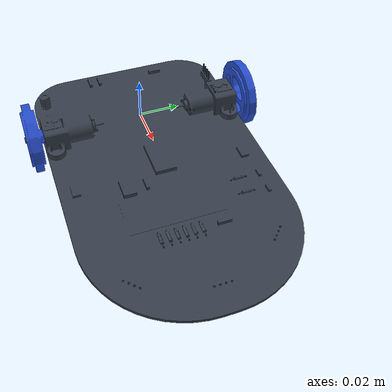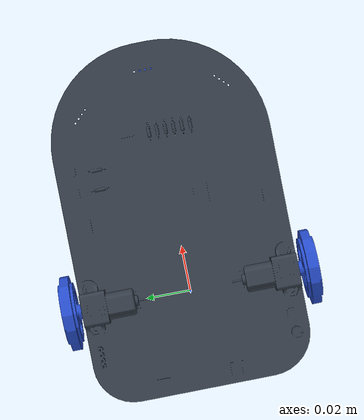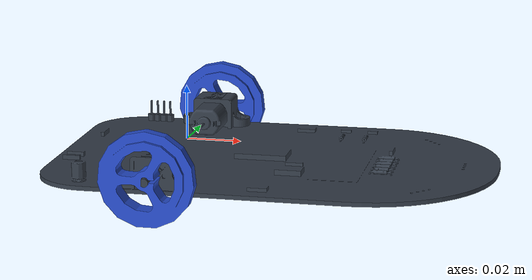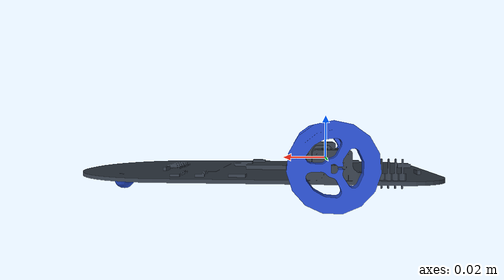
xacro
<?xml version="1.0" ?>
<robot name="microgiit2" xmlns:xacro="http://www.ros.org/wiki/xacro">

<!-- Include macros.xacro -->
  <xacro:include filename="$(find micromouse)/urdf/materiales.xacro" />
  <xacro:include filename="$(find micromouse)/urdf/micromouse2.gazebo" />
  <xacro:include filename="$(find micromouse)/urdf/macros.xacro" />

<!-- Chasiss -->
<link name="link_chassis">
    <!-- pose and inertial -->
    <pose>0 0 0 0 0 0</pose>
    <inertial>
      <mass value="5"/>
      <origin rpy="0 0 0" xyz="0.0 0 0"/>
      <inertia ixx="0.0395416666667" ixy="0" ixz="0" iyy="0.106208333333" iyz="0" izz="0.14166666667"/>
    </inertial>
    <!-- body -->
    <collision name="collision_chassis">
    <origin rpy="0 0 0" xyz="0 0 0"/>
      <geometry>
        <mesh filename="package://micromouse/meshes/collision/chasis.stl" scale="1 1 1"/>
      </geometry>
    </collision>
    <visual>
      <origin rpy="0 0 0" xyz="0 0 0"/>
      <geometry>
        <mesh filename="package://micromouse/meshes/collision/chasis.stl" scale="1 1 1"/>
      </geometry>
      <material name="blue"/>
    </visual>
</link>

<!-- caster front -->
<link name="caster_front_ball">
    <inertial>
      <mass value="0.1"/>
      <origin rpy="0 0 0" xyz="0 0 0"/>
      <inertia ixx="0.000526666666667" ixy="0" ixz="0" iyy="0.000526666666667" iyz="0" izz="0.000526666666667"/>
    </inertial>
    <collision name="caster_front_collision">
      <origin rpy=" 0 0 0" xyz="0 0 0"/>
      <geometry>
        <sphere radius="0.005"/>
      </geometry>
      <surface>
        <friction>
          <ode>
            <mu>0</mu>
            <mu2>0</mu2>
            <slip1>1.0</slip1>
            <slip2>1.0</slip2>
          </ode>
        </friction>
      </surface>
    </collision>
    <visual name="caster_front_visual">
      <origin rpy=" 0 0 0" xyz="0 0 0"/>
      <geometry>
        <sphere radius="0.005"/>
      </geometry>
    </visual>
</link>

<joint name="joint_casterfront_chasis" type="continuous">
  <origin rpy="0 0 0" xyz="0.1 0 -0.011"/>
  <child link="caster_front_ball"/>
  <parent link="link_chassis"/>
</joint>

<!-- Macros -->

<!-- right wheel-->
  <xacro:link_wheel name="link_right_wheel" />
  <xacro:joint_wheel name="joint_right_wheel" child="link_right_wheel" origin_xyz="0 -0.058 0" origin_rpy="0 0 0"/>

<!-- left wheel-->
  <xacro:link_wheel name="link_left_wheel" />
  <xacro:joint_wheel name="joint_left_wheel" child="link_left_wheel" origin_xyz="0 0.058 0" origin_rpy="0 0 3.1416"/>

</robot>

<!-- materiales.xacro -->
<robot >
  <material name="black">
    <color rgba="0.0 0.0 0.0 1.0"/>
  </material>

  <material name="blue">
    <color rgba="0.203125 0.23828125 0.28515625 1.0"/>
  </material>

  <material name="green">
    <color rgba="0.0 0.8 0.0 1.0"/>
  </material>

  <material name="grey">
    <color rgba="0.2 0.2 0.2 1.0"/>
  </material>

  <material name="orange">
    <color rgba="1.0 0.423529411765 0.0392156862745 1.0"/>
  </material>

  <material name="brown">
    <color rgba="0.870588235294 0.811764705882 0.764705882353 1.0"/>
  </material>

  <material name="red">
    <color rgba="0.80078125 0.12890625 0.1328125 1.0"/>
  </material>

  <material name="white">
    <color rgba="1.0 1.0 1.0 1.0"/>
  </material>

  <material name="c_link1">
    <color rgba="0.83 0.83 0.83 1" />
  </material>

  <material name="c_link2">
    <color rgba="1 0.65 0 1" />
  </material>

  <material name="c_link3">
    <color rgba="0.83 0.83 0.83 1" />
  </material>

  <material name="c_link4">
    <color rgba="1 0.65 0 1" />
  </material>

  <material name="c_link5">
    <color rgba="0.44 0.5 0.56 1" />
  </material>

  <material name="c_link6">
    <color rgba="0.83 0.83 0.83 1" />
  </material>

  <material name="c_base_link">
    <color rgba="0.44 0.5 0.56 1" />
  </material>
</robot>

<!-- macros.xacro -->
<robot>
    <macro name="link_wheel" params="name">
        <link name="${name}">
            <inertial>
              <mass value="0.2"/>
              <origin rpy="0 0 0" xyz="0 0 0"/>
              <inertia ixx="0.000526666666667" ixy="0" ixz="0" iyy="0.000526666666667" iyz="0" izz="0.001"/>
            </inertial>
            <collision name="${name}_wheel_collision">
              <origin rpy="0 0 0" xyz="0 0 0"/>
              <geometry>
                <mesh filename="package://micromouse/meshes/collision/wheel.stl" scale="1 1 1"/>
              </geometry>
            </collision>
            <visual name="${name}_visual">
              <origin rpy="0 0 0" xyz="0 0 0"/>
              <geometry>
                <mesh filename="package://micromouse/meshes/collision/wheel.stl" scale="1 1 1"/>
              </geometry>
            </visual>
        </link>
    </macro>

    <macro name="joint_wheel" params="name child origin_xyz origin_rpy">
      <joint name="${name}" type="continuous">
        <origin rpy="${origin_rpy}" xyz="${origin_xyz}"/>
        <child link="${child}"/>
        <parent link="link_chassis"/>
        <axis rpy="0 0 0" xyz="0 1 0"/>
        <limit effort="10000" velocity="1000"/>
        <joint_properties damping="1.0" friction="1.0"/>
      </joint>
    </macro>

    <macro name="cylinder_inertia" params="mass r l">
      <inertia  ixx="${mass*(3*r*r+l*l)/12}" ixy = "0" ixz = "0"
            iyy="${mass*(3*r*r+l*l)/12}" iyz = "0"
            izz="${mass*(r*r)/2}" />
    </macro>
</robot>
